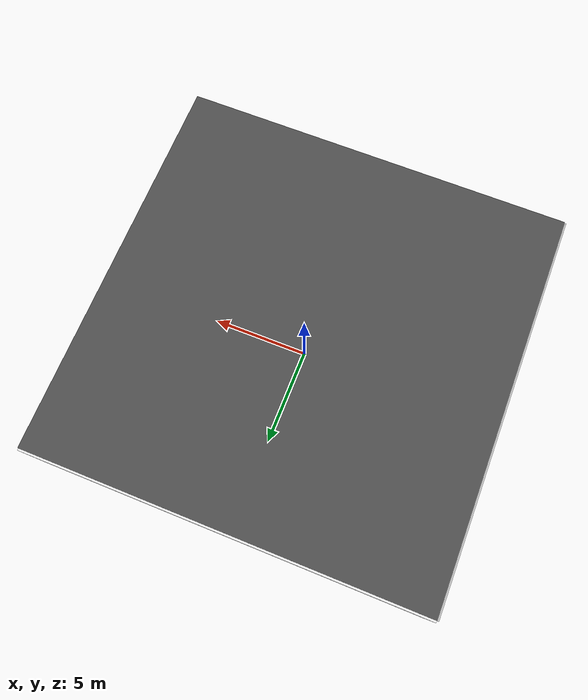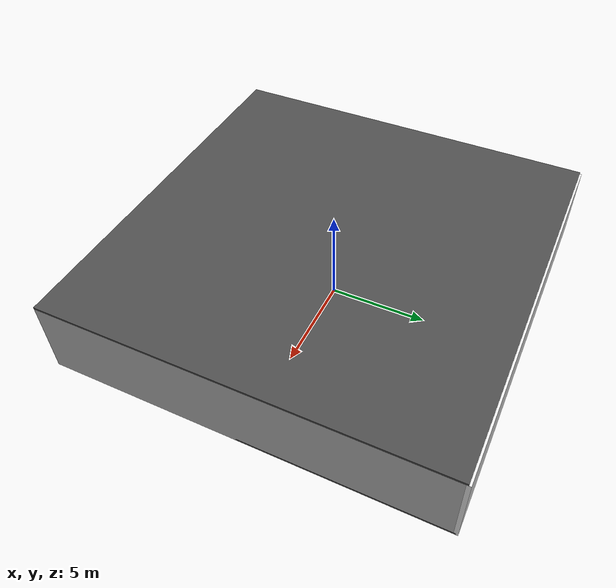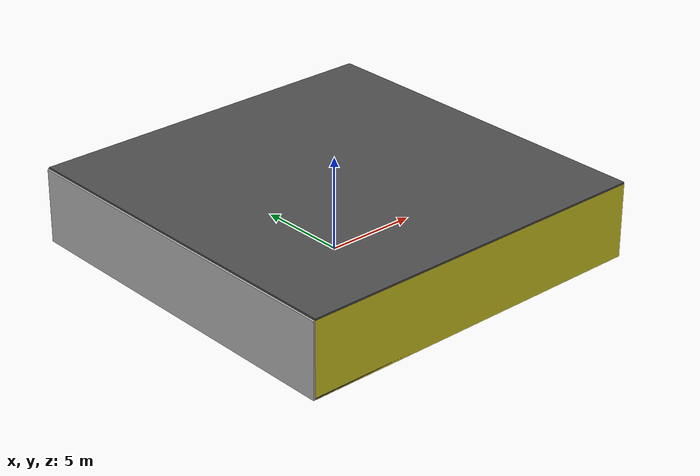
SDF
<sdf version="1.4">
 <world name="default">
  <physics type="ode">
   <max_step_size>0.001</max_step_size>
   <real_time_factor>1</real_time_factor>
   <real_time_update_rate>1000</real_time_update_rate>
   <gravity>0 0 -9.8</gravity>
  </physics>
  <scene><ambient>0.4 0.4 0.4 1</ambient><background>0.7 0.7 0.7 1</background><shadows>1</shadows></scene>
  <model name="Surrounding">
   <static>1</static>
   <link name="Ceiling">
    <collision name="Ceiling_Collision"><geometry><box><size>20 20 0.1</size></box></geometry></collision>
    <visual name="Ceiling_Visual">
     <geometry><box><size>20 20 0.1</size></box></geometry>
     <material>
      <script><uri>file://media/materials/scripts/gazebo.material</uri><name>Gazebo/Road</name></script>
     </material>
    </visual>
    <pose>0 0 4.05 0 0 0</pose>
   </link>
   <link name="Wall_South">
    <collision name="Wall_South_Collision">
     <geometry><box><size>20 0 4</size></box></geometry>
     <pose>0 0 2 0 -0 0</pose>
    </collision>
    <visual name="Wall_South_Visual">
     <pose>0 0 2 0 -0 0</pose>
     <geometry><box><size>20 0 4</size></box></geometry>
     <material>
      <script><uri>file://media/materials/scripts/gazebo.material</uri><name>Gazebo/YellowGlow</name></script>
     </material>
    </visual>
    <velocity_decay><linear>0</linear><angular>0</angular></velocity_decay>
    <pose>0 -10 0 0 -0 0</pose>
   </link>
   <link name="Wall_East">
    <collision name="Wall_21_Collision">
     <geometry><box><size>20 0 4</size></box></geometry>
     <pose>0 0 2 0 -0 0</pose>
    </collision>
    <visual name="Wall_21_Visual">
     <pose>0 0 2 0 -0 0</pose>
     <geometry><box><size>20 0 4</size></box></geometry>
     <material>
      <script><uri>file://media/materials/scripts/gazebo.material</uri><name>Gazebo/LightOff</name></script>
     </material>
    </visual>
    <velocity_decay><linear>0</linear><angular>0</angular></velocity_decay>
    <pose>10 0 0 0 -0 1.5708</pose>
   </link>
   <link name="Wall_North">
    <collision name="Wall_22_Collision">
     <geometry><box><size>20 0.2 4</size></box></geometry>
     <pose>0 0 2 0 -0 0</pose>
    </collision>
    <visual name="Wall_22_Visual">
     <pose>0 0 2 0 -0 0</pose>
     <geometry><box><size>20 0.2 4</size></box></geometry>
     <material>
      <script><uri>file://media/materials/scripts/gazebo.material</uri><name>Gazebo/White</name></script>
     </material>
    </visual>
    <velocity_decay><linear>0</linear><angular>0</angular></velocity_decay>
    <pose>0 10 0 0 -0 0</pose>
   </link>
   <link name="Wall_West">
    <collision name="Wall_23_Collision">
     <geometry><box><size>20 0.2 4</size></box></geometry>
     <pose>0 0 2 0 -0 0</pose>
    </collision>
    <visual name="Wall_23_Visual">
     <pose>0 0 2 0 -0 0</pose>
     <geometry><box><size>20 0.2 4</size></box></geometry>
     <material>
      <script><uri>file://media/materials/scripts/gazebo.material</uri><name>Gazebo/LightOff</name></script>
     </material>
    </visual>
    <velocity_decay><linear>0</linear><angular>0</angular></velocity_decay>
    <pose>-10 0 0 0 0 -1.5708</pose>
   </link>
   <link name="Ground_link">
    <collision name="collision">
     <pose>0 0 .05 0 -0 0</pose>
     <geometry><box><size>20 20 0.1</size></box></geometry>
    </collision>
    <visual name="visual">
     <pose>0 0 .05 0 -0 0</pose>
     <geometry><box><size>20 20 0.1</size></box></geometry>
     <material>
      <script><uri>file://media/materials/scripts/gazebo.material</uri><name>Gazebo/DarkGrey</name></script>
     </material>
    </visual>
   </link>
   <static>1</static>
  </model>
  <spherical_coordinates>
   <surface_model>EARTH_WGS84</surface_model>
   <latitude_deg>0</latitude_deg>
   <longitude_deg>0</longitude_deg>
   <elevation>0</elevation>
   <heading_deg>0</heading_deg>
  </spherical_coordinates>
  <light name="lightball_0" type="diffuse">
   <diffuse>0.8 0.8 0.8 1</diffuse>
   <specular>0.2 0.2 0.2 1</specular>
   <attenuation>
    <range>100</range>
    <constant>0.7</constant>
    <linear>0.01</linear>
    <quadratic>0.001</quadratic>
   </attenuation>
   <direction>-0.5 0.1 -0.9</direction>
   <pose>-4.8961665959 -8.55456508219 0.835971973806 0 0 0</pose>
  </light>
  <light name="lightball_1" type="diffuse">
   <diffuse>0.8 0.8 0.8 1</diffuse>
   <specular>0.2 0.2 0.2 1</specular>
   <attenuation>
    <range>100</range>
    <constant>0.7</constant>
    <linear>0.01</linear>
    <quadratic>0.001</quadratic>
   </attenuation>
   <direction>-0.5 0.1 -0.9</direction>
   <pose>1.87152424466 0.183229960985 1.06271367527 0 0 0</pose>
  </light>
  <light name="lightball_2" type="diffuse">
   <diffuse>0.8 0.8 0.8 1</diffuse>
   <specular>0.2 0.2 0.2 1</specular>
   <attenuation>
    <range>100</range>
    <constant>0.7</constant>
    <linear>0.01</linear>
    <quadratic>0.001</quadratic>
   </attenuation>
   <direction>-0.5 0.1 -0.9</direction>
   <pose>-8.53413884862 -6.88940948362 3.72141060112 0 0 0</pose>
  </light>
  <light name="lightball_3" type="diffuse">
   <diffuse>0.8 0.8 0.8 1</diffuse>
   <specular>0.2 0.2 0.2 1</specular>
   <attenuation>
    <range>100</range>
    <constant>0.7</constant>
    <linear>0.01</linear>
    <quadratic>0.001</quadratic>
   </attenuation>
   <direction>-0.5 0.1 -0.9</direction>
   <pose>6.48709333749 2.36692858032 0.890516841496 0 0 0</pose>
  </light>
  <light name="lightball_4" type="diffuse">
   <diffuse>0.8 0.8 0.8 1</diffuse>
   <specular>0.2 0.2 0.2 1</specular>
   <attenuation>
    <range>100</range>
    <constant>0.7</constant>
    <linear>0.01</linear>
    <quadratic>0.001</quadratic>
   </attenuation>
   <direction>-0.5 0.1 -0.9</direction>
   <pose>-8.18958123557 -9.09994123667 2.61622423554 0 0 0</pose>
  </light>
  <light name="lightball_5" type="diffuse">
   <diffuse>0.8 0.8 0.8 1</diffuse>
   <specular>0.2 0.2 0.2 1</specular>
   <attenuation>
    <range>100</range>
    <constant>0.7</constant>
    <linear>0.01</linear>
    <quadratic>0.001</quadratic>
   </attenuation>
   <direction>-0.5 0.1 -0.9</direction>
   <pose>6.56661322999 2.28648389347 0.589957420765 0 0 0</pose>
  </light>
  <light name="lightball_6" type="diffuse">
   <diffuse>0.8 0.8 0.8 1</diffuse>
   <specular>0.2 0.2 0.2 1</specular>
   <attenuation>
    <range>100</range>
    <constant>0.7</constant>
    <linear>0.01</linear>
    <quadratic>0.001</quadratic>
   </attenuation>
   <direction>-0.5 0.1 -0.9</direction>
   <pose>-3.18017338871 2.39480669885 1.23788532183 0 0 0</pose>
  </light>
  <light name="lightball_7" type="diffuse">
   <diffuse>0.8 0.8 0.8 1</diffuse>
   <specular>0.2 0.2 0.2 1</specular>
   <attenuation>
    <range>100</range>
    <constant>0.7</constant>
    <linear>0.01</linear>
    <quadratic>0.001</quadratic>
   </attenuation>
   <direction>-0.5 0.1 -0.9</direction>
   <pose>4.5344794668 -6.54991474343 3.14535832191 0 0 0</pose>
  </light>
  <light name="lightball_8" type="diffuse">
   <diffuse>0.8 0.8 0.8 1</diffuse>
   <specular>0.2 0.2 0.2 1</specular>
   <attenuation>
    <range>100</range>
    <constant>0.7</constant>
    <linear>0.01</linear>
    <quadratic>0.001</quadratic>
   </attenuation>
   <direction>-0.5 0.1 -0.9</direction>
   <pose>-1.20221397448 -4.18243456719 2.37251826645 0 0 0</pose>
  </light>
  <light name="lightball_9" type="diffuse">
   <diffuse>0.8 0.8 0.8 1</diffuse>
   <specular>0.2 0.2 0.2 1</specular>
   <attenuation>
    <range>100</range>
    <constant>0.7</constant>
    <linear>0.01</linear>
    <quadratic>0.001</quadratic>
   </attenuation>
   <direction>-0.5 0.1 -0.9</direction>
   <pose>-3.5403137965 -8.86909867454 1.12464139955 0 0 0</pose>
  </light>
  <light name="lightball_10" type="diffuse">
   <diffuse>0.8 0.8 0.8 1</diffuse>
   <specular>0.2 0.2 0.2 1</specular>
   <attenuation>
    <range>100</range>
    <constant>0.7</constant>
    <linear>0.01</linear>
    <quadratic>0.001</quadratic>
   </attenuation>
   <direction>-0.5 0.1 -0.9</direction>
   <pose>-6.77197218271 7.8095620119 2.74606122467 0 0 0</pose>
  </light>
  <light name="lightball_11" type="diffuse">
   <diffuse>0.8 0.8 0.8 1</diffuse>
   <specular>0.2 0.2 0.2 1</specular>
   <attenuation>
    <range>100</range>
    <constant>0.7</constant>
    <linear>0.01</linear>
    <quadratic>0.001</quadratic>
   </attenuation>
   <direction>-0.5 0.1 -0.9</direction>
   <pose>7.01438230539 -5.54851083725 2.58690274553 0 0 0</pose>
  </light>
  <light name="lightball_12" type="diffuse">
   <diffuse>0.8 0.8 0.8 1</diffuse>
   <specular>0.2 0.2 0.2 1</specular>
   <attenuation>
    <range>100</range>
    <constant>0.7</constant>
    <linear>0.01</linear>
    <quadratic>0.001</quadratic>
   </attenuation>
   <direction>-0.5 0.1 -0.9</direction>
   <pose>-5.72349422916 -3.41614082767 1.37792515213 0 0 0</pose>
  </light>
  <light name="lightball_13" type="diffuse">
   <diffuse>0.8 0.8 0.8 1</diffuse>
   <specular>0.2 0.2 0.2 1</specular>
   <attenuation>
    <range>100</range>
    <constant>0.7</constant>
    <linear>0.01</linear>
    <quadratic>0.001</quadratic>
   </attenuation>
   <direction>-0.5 0.1 -0.9</direction>
   <pose>3.79646679831 7.57811496945 3.50196328492 0 0 0</pose>
  </light>
  <include>
   <uri>model://textured_shapes</uri>
   <pose>-4.89714595359 -7.16819226136 0 0 0 1.23646526398</pose>
  </include>
  <include><uri>model://table</uri><pose>-4.75151576129 7.3980963404 0 0 0 2.06190045721</pose></include>
  <include><uri>model://cabinet</uri><pose>-0.693622377705 -8.11274001921 0 0 0 0.0602506809337</pose></include>
  <include><uri>model://cabinet</uri><pose>3.47011948854 -4.95538080391 0 0 0 1.3561837464</pose></include>
  <include>
   <uri>model://textured_shapes</uri>
   <pose>4.10658274113 3.67638097543 0 0 0 2.99177043383</pose>
  </include>
  <include>
   <uri>model://robocup_3Dsim_goal</uri>
   <pose>7.10466835491 -7.50636007548 0 0 0 0.255844405978</pose>
  </include>
  <include>
   <uri>model://construction_cone</uri>
   <pose>8.12442482309 0.783269800676 0 0 0 2.35205294915</pose>
  </include>
 </world>
</sdf>

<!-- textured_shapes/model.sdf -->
<sdf version="1.6">
  <model name="textured_shapes">
    <pose>0 0 0.5 0 0 0</pose>
    <link name="box">
      <pose>0 -1.5 0 0 0 0</pose>
      <collision name="collision">
        <geometry>
          <box>
            <size>1 1 1</size>
          </box>
        </geometry>
      </collision>
      <visual name="visual">
        <geometry>
          <box>
            <size>1 1 1</size>
          </box>
        </geometry>
        <material>
          <script>
            <uri>model://../model_source/models/textured_shapes/materials/scripts</uri>
            <uri>model://../model_source/models/textured_shapes/materials/textures</uri>
            <name>TexturedShape/Squares</name>
          </script>
        </material>
      </visual>
    </link>
    <link name="sphere">
      <collision name="collision">
        <geometry>
          <sphere>
            <radius>0.5</radius>
          </sphere>
        </geometry>
      </collision>
      <visual name="visual">
        <geometry>
          <sphere>
            <radius>0.5</radius>
          </sphere>
        </geometry>
        <material>
          <script>
            <uri>model://../model_source/models/textured_shapes/materials/scripts</uri>
            <uri>model://../model_source/models/textured_shapes/materials/textures</uri>
            <name>TexturedShape/Squares</name>
          </script>
        </material>
      </visual>
    </link>
    <link name="cylinder">
      <pose>0 1.5 0 0 0 0</pose>
      <collision name="collision">
        <geometry>
          <cylinder>
            <radius>0.5</radius>
            <length>1</length>
          </cylinder>
        </geometry>
      </collision>
      <visual name="visual">
        <geometry>
          <cylinder>
            <radius>0.5</radius>
            <length>1</length>
          </cylinder>
        </geometry>
        <material>
          <script>
            <uri>model://../model_source/models/textured_shapes/materials/scripts</uri>
            <uri>model://../model_source/models/textured_shapes/materials/textures</uri>
            <name>TexturedShape/Squares</name>
          </script>
        </material>
      </visual>
    </link>
  </model>
</sdf>

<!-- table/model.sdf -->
<sdf version="1.5">
  <model name="table">
    <static>true</static>
    <link name="link">
      <collision name="surface">
        <pose>0 0 1.0 0 0 0</pose>
        <geometry>
          <box>
            <size>1.5 0.8 0.03</size>
          </box>
        </geometry>
        <surface>
          <friction>
            <ode>
              <mu>0.6</mu>
              <mu2>0.6</mu2>
            </ode>
          </friction>
        </surface>
      </collision>
      <visual name="visual1">
        <pose>0 0 1.0 0 0 0</pose>
        <geometry>
          <box>
            <size>1.5 0.8 0.03</size>
          </box>
        </geometry>
        <material>
          <script>
            <uri>model://media/materials/scripts/gazebo.material</uri>
            <name>Gazebo/Wood</name>
          </script>
        </material>
      </visual>
      <collision name="front_left_leg">
        <pose>0.68 0.38 0.5 0 0 0</pose>
        <geometry>
          <cylinder>
            <radius>0.02</radius>
            <length>1.0</length>
          </cylinder>
        </geometry>
      </collision>
      <visual name="front_left_leg">
        <pose>0.68 0.38 0.5 0 0 0</pose>
        <geometry>
          <cylinder>
            <radius>0.02</radius>
            <length>1.0</length>
          </cylinder>
        </geometry>
        <material>
          <script>
            <uri>model://media/materials/scripts/gazebo.material</uri>
            <name>Gazebo/Grey</name>
          </script>
        </material>
      </visual>
      <collision name="front_right_leg">
        <pose>0.68 -0.38 0.5 0 0 0</pose>
        <geometry>
          <cylinder>
            <radius>0.02</radius>
            <length>1.0</length>
          </cylinder>
        </geometry>
      </collision>
      <visual name="front_right_leg">
        <pose>0.68 -0.38 0.5 0 0 0</pose>
        <geometry>
          <cylinder>
            <radius>0.02</radius>
            <length>1.0</length>
          </cylinder>
        </geometry>
        <material>
          <script>
            <uri>model://media/materials/scripts/gazebo.material</uri>
            <name>Gazebo/Grey</name>
          </script>
        </material>
      </visual>
      <collision name="back_right_leg">
        <pose>-0.68 -0.38 0.5 0 0 0</pose>
        <geometry>
          <cylinder>
            <radius>0.02</radius>
            <length>1.0</length>
          </cylinder>
        </geometry>
      </collision>
      <visual name="back_right_leg">
        <pose>-0.68 -0.38 0.5 0 0 0</pose>
        <geometry>
          <cylinder>
            <radius>0.02</radius>
            <length>1.0</length>
          </cylinder>
        </geometry>
        <material>
          <script>
            <uri>model://media/materials/scripts/gazebo.material</uri>
            <name>Gazebo/Grey</name>
          </script>
        </material>
      </visual>
      <collision name="back_left_leg">
        <pose>-0.68 0.38 0.5 0 0 0</pose>
        <geometry>
          <cylinder>
            <radius>0.02</radius>
            <length>1.0</length>
          </cylinder>
        </geometry>
      </collision>
      <visual name="back_left_leg">
        <pose>-0.68 0.38 0.5 0 0 0</pose>
        <geometry>
          <cylinder>
            <radius>0.02</radius>
            <length>1.0</length>
          </cylinder>
        </geometry>
        <material>
          <script>
            <uri>model://media/materials/scripts/gazebo.material</uri>
            <name>Gazebo/Grey</name>
          </script>
        </material>
      </visual>
    </link>
  </model>
</sdf>

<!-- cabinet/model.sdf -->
<sdf version="1.5">
  <model name="cabinet">
    <static>true</static>
    <link name="cabinet_bottom_plate">
      <inertial>
        <pose>0 0 -1 0 0 0</pose>
        <inertia>
          <ixx>2.050000</ixx>
          <ixy>0</ixy>
          <ixz>0</ixz>
          <iyy>2.050000</iyy>
          <iyz>0</iyz>
          <izz>2.050000</izz>
        </inertia>
        <mass>25.000000</mass>
      </inertial>
      <collision name="cabinet_bottom_plate_geom">
        <pose>0 0 0.010000 0 0 0</pose>
        <geometry>
          <box>
            <size>0.450000 0.450000 0.020000</size>
          </box>
        </geometry>
      </collision>
      <visual name="cabinet_bottom_plate_geom_visual">
        <pose>0 0 0.010000 0 0 0</pose>
        <geometry>
          <box>
            <size>0.450000 0.450000 0.020000</size>
          </box>
        </geometry>
        <material>
          <script>
            <uri>model://media/materials/scripts/gazebo.material</uri>
            <name>Gazebo/Wood</name>
          </script>
        </material>
      </visual>
      <collision name="cabinet_bottom_plate_geom_cabinet_back_plate">
        <pose>0.235000 0 0.510000 0 0 0</pose>
        <geometry>
          <box>
            <size>0.020000 0.450000 1.020000</size>
          </box>
        </geometry>
      </collision>
      <visual name="cabinet_bottom_plate_geom_cabinet_back_plate_visual">
        <pose>0.235000 0 0.510000 0 0 0</pose>
        <geometry>
          <box>
            <size>0.020000 0.450000 1.020000</size>
          </box>
        </geometry>
        <material>
          <script>
            <uri>model://media/materials/scripts/gazebo.material</uri>
            <name>Gazebo/Wood</name>
          </script>
        </material>
      </visual>
      <collision name="cabinet_bottom_plate_geom_cabinet_left_plate">
        <pose>0 0.235000 0.510000 0 0 0</pose>
        <geometry>
          <box>
            <size>0.450000 0.020000 1.020000</size>
          </box>
        </geometry>
      </collision>
      <visual name="cabinet_bottom_plate_geom_cabinet_left_plate_visual">
        <pose>0 0.235000 0.510000 0 0 0</pose>
        <geometry>
          <box>
            <size>0.450000 0.020000 1.020000</size>
          </box>
        </geometry>
        <material>
          <script>
            <uri>model://media/materials/scripts/gazebo.material</uri>
            <name>Gazebo/Wood</name>
          </script>
        </material>
      </visual>
      <collision name="cabinet_bottom_plate_geom_cabinet_middle_plate">
        <pose>0 0 0.510000 0 0 0</pose>
        <geometry>
          <box>
            <size>0.450000 0.450000 0.020000</size>
          </box>
        </geometry>
      </collision>
      <visual name="cabinet_bottom_plate_geom_cabinet_middle_plate_visual">
        <pose>0 0 0.510000 0 0 0</pose>
        <geometry>
          <box>
            <size>0.450000 0.450000 0.020000</size>
          </box>
        </geometry>
        <material>
          <script>
            <uri>model://media/materials/scripts/gazebo.material</uri>
            <name>Gazebo/Wood</name>
          </script>
        </material>
      </visual>
      <collision name="cabinet_bottom_plate_geom_cabinet_right_plate">
        <pose>0 -0.235000 0.510000 0 0 0</pose>
        <geometry>
          <box>
            <size>0.450000 0.020000 1.020000</size>
          </box>
        </geometry>
      </collision>
      <visual name="cabinet_bottom_plate_geom_cabinet_right_plate_visual">
        <pose>0 -0.235000 0.510000 0 0 0</pose>
        <geometry>
          <box>
            <size>0.450000 0.020000 1.020000</size>
          </box>
        </geometry>
        <material>
          <script>
            <uri>model://media/materials/scripts/gazebo.material</uri>
            <name>Gazebo/Wood</name>
          </script>
        </material>
      </visual>
      <collision name="cabinet_bottom_plate_geom_cabinet_top_plate">
        <pose>0 0 1.010000 0 0 0</pose>
        <geometry>
          <box>
            <size>0.450000 0.450000 0.020000</size>
          </box>
        </geometry>
      </collision>
      <visual name="cabinet_bottom_plate_geom_cabinet_top_plate_visual">
        <pose>0 0 1.010000 0 0 0</pose>
        <geometry>
          <box>
            <size>0.450000 0.450000 0.020000</size>
          </box>
        </geometry>
        <material>
          <script>
            <uri>model://media/materials/scripts/gazebo.material</uri>
            <name>Gazebo/Wood</name>
          </script>
        </material>
      </visual>
    </link>
  </model>
</sdf>

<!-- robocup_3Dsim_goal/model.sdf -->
<sdf version="1.5">
  <model name="robocup_3d_goal">
    <static>true</static>
    <link name="left_post">
      <pose>0 1.05 0.45 0 0 0</pose>
      <collision name="collision">
        <geometry>
          <cylinder>
            <radius>0.05</radius>
            <length>0.9</length>
          </cylinder>
        </geometry>
      </collision>
      <visual name="visual">
        <geometry>
          <cylinder>
            <radius>0.05</radius>
            <length>0.9</length>
          </cylinder>
        </geometry>
        <material>
          <script>
            <uri>file://media/materials/scripts/gazebo.material</uri>
            <name>Gazebo/ZincYellow</name>
          </script>
        </material>
      </visual>
    </link>
    <link name="left_support_horiz_lower">
      <pose>0.30 1.05 0.01 0 0 0</pose>
      <collision name="collision">
        <geometry>
          <box>
            <size>0.50 0.02 0.02</size>
          </box>
        </geometry>
      </collision>
      <visual name="visual">
        <geometry>
          <box>
            <size>0.50 0.02 0.02</size>
          </box>
        </geometry>
        <material>
          <script>
            <uri>file://media/materials/scripts/gazebo.material</uri>
            <name>Gazebo/White</name>
          </script>
        </material>
      </visual>
    </link>
    <link name="left_support_horiz_upper">
      <pose>0.30 1.05 0.79 0 0 0</pose>
      <collision name="collision">
        <geometry>
          <box>
            <size>0.50 0.02 0.02</size>
          </box>
        </geometry>
      </collision>
      <visual name="visual">
        <geometry>
          <box>
            <size>0.50 0.02 0.02</size>
          </box>
        </geometry>
        <material>
          <script>
            <uri>file://media/materials/scripts/gazebo.material</uri>
            <name>Gazebo/White</name>
          </script>
        </material>
      </visual>
    </link>
    <link name="left_support_vertical">
      <pose>0.56 1.05 0.4 0 1.5708 0</pose>
      <collision name="collision">
        <geometry>
          <box>
            <size>0.80 0.02 0.02</size>
          </box>
        </geometry>
      </collision>
      <visual name="visual">
        <geometry>
          <box>
            <size>0.80 0.02 0.02</size>
          </box>
        </geometry>
        <material>
          <script>
            <uri>file://media/materials/scripts/gazebo.material</uri>
            <name>Gazebo/White</name>
          </script>
        </material>
      </visual>
    </link>
    <link name="right_support_horiz_lower">
      <pose>0.30 -1.05 0.01 0 0 0</pose>
      <collision name="collision">
        <geometry>
          <box>
            <size>0.50 0.02 0.02</size>
          </box>
        </geometry>
      </collision>
      <visual name="visual">
        <geometry>
          <box>
            <size>0.50 0.02 0.02</size>
          </box>
        </geometry>
        <material>
          <script>
            <uri>file://media/materials/scripts/gazebo.material</uri>
            <name>Gazebo/White</name>
          </script>
        </material>
      </visual>
    </link>
    <link name="right_support_horiz_upper">
      <pose>0.30 -1.05 0.79 0 0 0</pose>
      <collision name="collision">
        <geometry>
          <box>
            <size>0.50 0.02 0.02</size>
          </box>
        </geometry>
      </collision>
      <visual name="visual">
        <geometry>
          <box>
            <size>0.50 0.02 0.02</size>
          </box>
        </geometry>
        <material>
          <script>
            <uri>file://media/materials/scripts/gazebo.material</uri>
            <name>Gazebo/White</name>
          </script>
        </material>
      </visual>
    </link>
    <link name="right_support_vertical">
      <pose>0.56 -1.05 0.4 0 1.5708 0</pose>
      <collision name="collision">
        <geometry>
          <box>
            <size>0.80 0.02 0.02</size>
          </box>
        </geometry>
      </collision>
      <visual name="visual">
        <geometry>
          <box>
            <size>0.80 0.02 0.02</size>
          </box>
        </geometry>
        <material>
          <script>
            <uri>file://media/materials/scripts/gazebo.material</uri>
            <name>Gazebo/White</name>
          </script>
        </material>
      </visual>
    </link>
    <link name="center_support_horiz_lower">
      <pose>0.56 0 0.01 0 1.5708 0</pose>
      <collision name="collision">
        <geometry>
          <box>
            <size>0.02 2.08 0.02</size>
          </box>
        </geometry>
      </collision>
      <visual name="visual">
        <geometry>
          <box>
            <size>0.02 2.08 0.02</size>
          </box>
        </geometry>
        <material>
          <script>
            <uri>file://media/materials/scripts/gazebo.material</uri>
            <name>Gazebo/White</name>
          </script>
        </material>
      </visual>
    </link>
    <link name="center_support_horiz_upper">
      <pose>0.56 0 0.79 0 1.5708 0</pose>
      <collision name="collision">
        <geometry>
          <box>
            <size>0.02 2.08 0.02</size>
          </box>
        </geometry>
      </collision>
      <visual name="visual">
        <geometry>
          <box>
            <size>0.02 2.08 0.02</size>
          </box>
        </geometry>
        <material>
          <script>
            <uri>file://media/materials/scripts/gazebo.material</uri>
            <name>Gazebo/White</name>
          </script>
        </material>
      </visual>
    </link>
    <link name="right_post">
      <pose>0 -1.05 0.45 0 0 0</pose>
      <collision name="collision">
        <geometry>
          <cylinder>
            <radius>0.05</radius>
            <length>0.9</length>
          </cylinder>
        </geometry>
      </collision>
      <visual name="visual">
        <geometry>
          <cylinder>
            <radius>0.05</radius>
            <length>0.9</length>
          </cylinder>
        </geometry>
        <material>
          <script>
            <uri>file://media/materials/scripts/gazebo.material</uri>
            <name>Gazebo/ZincYellow</name>
          </script>
        </material>
      </visual>
    </link>
    <link name="crossbar">
      <pose>0 0 0.85 1.57 1.57 0</pose>
      <collision name="collision">
        <geometry>
          <cylinder>
            <radius>0.05</radius>
            <length>2.0</length>
          </cylinder>
        </geometry>
      </collision>
      <visual name="visual">
        <geometry>
          <cylinder>
            <radius>0.05</radius>
            <length>2.0</length>
          </cylinder>
        </geometry>
        <material>
          <script>
            <uri>file://media/materials/scripts/gazebo.material</uri>
            <name>Gazebo/ZincYellow</name>
          </script>
        </material>
      </visual>
    </link>
    <link name="center_net">
      <pose>0.56 0 0.40 0 0 0</pose>
      <collision name="collision">
        <geometry>
          <box>
            <size>0.01 2.1 0.80</size>
          </box>
        </geometry>
      </collision>
      <visual name="visual">
        <geometry>
          <box>
            <size>0.01 2.1 0.80</size>
          </box>
        </geometry>
        <material>
          <script>
            <uri>model://../model_source/models/robocup09_spl_field/materials/scripts/</uri>
            <uri>model://../model_source/models/robocup09_spl_field/materials/textures/</uri>
            <name>RoboCup/Net</name>
          </script>
        </material>
      </visual>
    </link>
    <link name="left_net">
      <pose>0.30 1.05 0.40 0 0 0</pose>
      <collision name="collision">
        <geometry>
          <box>
            <size>0.50 0.01 0.76</size>
          </box>
        </geometry>
      </collision>
      <visual name="visual">
        <geometry>
          <box>
            <size>0.50 0.01 0.76</size>
          </box>
        </geometry>
        <material>
          <script>
            <uri>model://../model_source/models/robocup09_spl_field/materials/scripts/</uri>
            <uri>model://../model_source/models/robocup09_spl_field/materials/textures/</uri>
            <name>RoboCup/Net</name>
          </script>
        </material>
      </visual>
    </link>
    <link name="right_net">
      <pose>0.30 -1.05 0.40 0 0 0</pose>
      <collision name="collision">
        <geometry>
          <box>
            <size>0.50 0.01 0.76</size>
          </box>
        </geometry>
      </collision>
      <visual name="visual">
        <geometry>
          <box>
            <size>0.50 0.01 0.76</size>
          </box>
        </geometry>
        <material>
          <script>
            <uri>model://../model_source/models/robocup09_spl_field/materials/scripts/</uri>
            <uri>model://../model_source/models/robocup09_spl_field/materials/textures/</uri>
            <name>RoboCup/Net</name>
          </script>
        </material>
      </visual>
    </link>
  </model>
</sdf>

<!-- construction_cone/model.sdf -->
<sdf version="1.5">
  <model name="Construction Cone">
    <link name="link">
      <collision name="collision">
        <geometry>
          <mesh>
            <scale>10 10 10</scale>
            <uri>file://isr-testbed/construction_cone/meshes/construction_cone.dae</uri>
          </mesh>
        </geometry>
      </collision>
      <visual name="visual">
        <geometry>
          <mesh>
            <scale>10 10 10</scale>
            <uri>file://isr-testbed/construction_cone/meshes/construction_cone.dae</uri>
          </mesh>
        </geometry>
      </visual>
    </link>
  </model>
</sdf>
